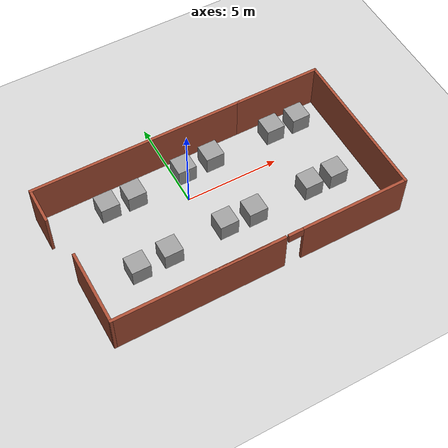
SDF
<sdf version="1.7">
 <world name="default">
  <light name="sun" type="directional">
   <pose>0 0 10 0 -0 0</pose>
   <diffuse>0.8 0.8 0.8 1</diffuse>
   <specular>0.2 0.2 0.2 1</specular>
   <attenuation>
    <range>1000</range>
    <constant>0.9</constant>
    <linear>0.01</linear>
    <quadratic>0.001</quadratic>
   </attenuation>
   <direction>-0.5 0.1 -0.9</direction>
   <spot><inner_angle>0</inner_angle><outer_angle>0</outer_angle><falloff>0</falloff></spot>
  </light>
  <model name="ground_plane">
   <static>1</static>
   <link name="link">
    <collision name="collision">
     <geometry><plane><normal>0 0 1</normal><size>100 100</size></plane></geometry>
     <surface>
      <contact><collide_bitmask>65535</collide_bitmask></contact>
      <friction><ode><mu>100</mu><mu2>50</mu2></ode></friction>
     </surface>
    </collision>
    <visual name="visual">
     <cast_shadows>0</cast_shadows>
     <geometry><plane><normal>0 0 1</normal><size>100 100</size></plane></geometry>
     <material>
      <script><uri>file://media/materials/scripts/gazebo.material</uri><name>Gazebo/Grey</name></script>
     </material>
    </visual>
   </link>
  </model>
  <gravity>0 0 -9.8</gravity>
  <magnetic_field>6e-06 2.3e-05 -4.2e-05</magnetic_field>
  <atmosphere type="adiabatic"/>
  <physics type="ode">
   <max_step_size>0.001</max_step_size>
   <real_time_factor>1</real_time_factor>
   <real_time_update_rate>1000</real_time_update_rate>
  </physics>
  <scene><ambient>0.4 0.4 0.4 1</ambient><background>0.7 0.7 0.7 1</background><shadows>1</shadows></scene>
  <audio><device>default</device></audio>
  <spherical_coordinates>
   <surface_model>EARTH_WGS84</surface_model>
   <latitude_deg>0</latitude_deg>
   <longitude_deg>0</longitude_deg>
   <elevation>0</elevation>
   <heading_deg>0</heading_deg>
  </spherical_coordinates>
  <model name="cafe_new">
   <pose>0.870404 -1.49086 0 0 -0 0</pose>
   <link name="Wall_1">
    <collision name="Wall_1_Collision">
     <geometry><box><size>2 0.15 2.5</size></box></geometry>
     <pose>0 0 1.25 0 -0 0</pose>
    </collision>
    <visual name="Wall_1_Visual">
     <pose>0 0 1.25 0 -0 0</pose>
     <geometry><box><size>2 0.15 2.5</size></box></geometry>
     <material>
      <script><uri>file://media/materials/scripts/gazebo.material</uri><name>Gazebo/Bricks</name></script>
      <ambient>1 1 1 1</ambient>
     </material>
     <meta><layer>0</layer></meta>
    </visual>
    <pose>-7.975 3.125 0 0 -0 1.5708</pose>
   </link>
   <link name="Wall_2">
    <collision name="Wall_2_Collision">
     <geometry><box><size>11.5 0.15 2.5</size></box></geometry>
     <pose>0 0 1.25 0 -0 0</pose>
    </collision>
    <visual name="Wall_2_Visual">
     <pose>0 0 1.25 0 -0 0</pose>
     <geometry><box><size>11.5 0.15 2.5</size></box></geometry>
     <material>
      <script><uri>file://media/materials/scripts/gazebo.material</uri><name>Gazebo/Bricks</name></script>
      <ambient>1 1 1 1</ambient>
     </material>
     <meta><layer>0</layer></meta>
    </visual>
    <pose>-2.3 4.05 0 0 -0 0</pose>
   </link>
   <link name="Wall_3">
    <collision name="Wall_3_Collision">
     <geometry><box><size>4.75 0.15 2.5</size></box></geometry>
     <pose>0 0 1.25 0 -0 0</pose>
    </collision>
    <visual name="Wall_3_Visual">
     <pose>0 0 1.25 0 -0 0</pose>
     <geometry><box><size>4.75 0.15 2.5</size></box></geometry>
     <material>
      <script><uri>file://media/materials/scripts/gazebo.material</uri><name>Gazebo/Bricks</name></script>
      <ambient>1 1 1 1</ambient>
     </material>
     <meta><layer>0</layer></meta>
    </visual>
    <pose>5.675 4.05 0 0 -0 0</pose>
   </link>
   <link name="Wall_4">
    <collision name="Wall_4_Collision">
     <geometry><box><size>8.25 0.15 2.5</size></box></geometry>
     <pose>0 0 1.25 0 -0 0</pose>
    </collision>
    <visual name="Wall_4_Visual">
     <pose>0 0 1.25 0 -0 0</pose>
     <geometry><box><size>8.25 0.15 2.5</size></box></geometry>
     <material>
      <script><uri>file://media/materials/scripts/gazebo.material</uri><name>Gazebo/Bricks</name></script>
      <ambient>1 1 1 1</ambient>
     </material>
     <meta><layer>0</layer></meta>
    </visual>
    <pose>7.975 -0 0 0 -0 -1.5708</pose>
   </link>
   <link name="Wall_5">
    <pose>0.175 -4.05 0 0 -0 3.14159</pose>
    <visual name="Wall_5_Visual_0">
     <pose>-4.96927 0 1.25 0 -0 0</pose>
     <geometry><box><size>5.81146 0.15 2.5</size></box></geometry>
     <material>
      <script><uri>file://media/materials/scripts/gazebo.material</uri><name>Gazebo/Bricks</name></script>
      <ambient>1 1 1 1</ambient>
     </material>
     <meta><layer>0</layer></meta>
    </visual>
    <collision name="Wall_5_Collision_0">
     <geometry><box><size>5.81146 0.15 2.5</size></box></geometry>
     <pose>-4.96927 0 1.25 0 -0 0</pose>
    </collision>
    <visual name="Wall_5_Visual_1">
     <pose>3.35573 0 1.25 0 -0 0</pose>
     <geometry><box><size>9.03854 0.15 2.5</size></box></geometry>
     <material>
      <script><uri>file://media/materials/scripts/gazebo.material</uri><name>Gazebo/Bricks</name></script>
      <ambient>1 1 1 1</ambient>
     </material>
     <meta><layer>0</layer></meta>
    </visual>
    <collision name="Wall_5_Collision_1">
     <geometry><box><size>9.03854 0.15 2.5</size></box></geometry>
     <pose>3.35573 0 1.25 0 -0 0</pose>
    </collision>
    <visual name="Wall_5_Visual_2">
     <pose>3.76029 0 1.25 0 -0 0</pose>
     <geometry><box><size>8.22943 0.15 2.5</size></box></geometry>
     <material>
      <script><uri>file://media/materials/scripts/gazebo.material</uri><name>Gazebo/Bricks</name></script>
      <ambient>1 1 1 1</ambient>
     </material>
     <meta><layer>0</layer></meta>
    </visual>
    <collision name="Wall_5_Collision_2">
     <geometry><box><size>8.22943 0.15 2.5</size></box></geometry>
     <pose>3.76029 0 1.25 0 -0 0</pose>
    </collision>
    <visual name="Wall_5_Visual_3">
     <pose>-1.65898 0 2.25 0 -0 0</pose>
     <geometry><box><size>0.809112 0.15 0.5</size></box></geometry>
     <material>
      <script><uri>file://media/materials/scripts/gazebo.material</uri><name>Gazebo/Bricks</name></script>
      <ambient>1 1 1 1</ambient>
     </material>
     <meta><layer>0</layer></meta>
    </visual>
    <collision name="Wall_5_Collision_3">
     <geometry><box><size>0.809112 0.15 0.5</size></box></geometry>
     <pose>-1.65898 0 2.25 0 -0 0</pose>
    </collision>
   </link>
   <link name="Wall_6">
    <collision name="Wall_6_Collision">
     <geometry><box><size>4 0.15 2.5</size></box></geometry>
     <pose>0 0 1.25 0 -0 0</pose>
    </collision>
    <visual name="Wall_6_Visual">
     <pose>0 0 1.25 0 -0 0</pose>
     <geometry><box><size>4 0.15 2.5</size></box></geometry>
     <material>
      <script><uri>file://media/materials/scripts/gazebo.material</uri><name>Gazebo/Bricks</name></script>
      <ambient>1 1 1 1</ambient>
     </material>
     <meta><layer>0</layer></meta>
    </visual>
    <pose>-7.625 -2.125 0 0 -0 1.5708</pose>
   </link>
   <static>1</static>
  </model>
  <model name="unit_box">
   <pose>7.2618 1.60045 0.499995 0 1e-05 0</pose>
   <link name="link">
    <inertial>
     <mass>1</mass>
     <inertia>
      <ixx>0.166667</ixx>
      <ixy>0</ixy>
      <ixz>0</ixz>
      <iyy>0.166667</iyy>
      <iyz>0</iyz>
      <izz>0.166667</izz>
     </inertia>
    </inertial>
    <collision name="collision"><geometry><box><size>1 1 1</size></box></geometry></collision>
    <visual name="visual">
     <geometry><box><size>1 1 1</size></box></geometry>
     <material>
      <script><name>Gazebo/Grey</name><uri>file://media/materials/scripts/gazebo.material</uri></script>
     </material>
    </visual>
   </link>
  </model>
  <model name="unit_box_0">
   <pose>5.72334 1.60045 0.499995 -1e-05 -0 -0</pose>
   <link name="link">
    <inertial>
     <mass>1</mass>
     <inertia>
      <ixx>0.166667</ixx>
      <ixy>0</ixy>
      <ixz>0</ixz>
      <iyy>0.166667</iyy>
      <iyz>0</iyz>
      <izz>0.166667</izz>
     </inertia>
    </inertial>
    <collision name="collision"><geometry><box><size>1 1 1</size></box></geometry></collision>
    <visual name="visual">
     <geometry><box><size>1 1 1</size></box></geometry>
     <material>
      <script><name>Gazebo/Grey</name><uri>file://media/materials/scripts/gazebo.material</uri></script>
     </material>
    </visual>
   </link>
  </model>
  <model name="unit_box_1">
   <pose>2.11897 1.5565 0.499995 0 1e-05 0</pose>
   <link name="link">
    <inertial>
     <mass>1</mass>
     <inertia>
      <ixx>0.166667</ixx>
      <ixy>0</ixy>
      <ixz>0</ixz>
      <iyy>0.166667</iyy>
      <iyz>0</iyz>
      <izz>0.166667</izz>
     </inertia>
    </inertial>
    <collision name="collision"><geometry><box><size>1 1 1</size></box></geometry></collision>
    <visual name="visual">
     <geometry><box><size>1 1 1</size></box></geometry>
     <material>
      <script><name>Gazebo/Grey</name><uri>file://media/materials/scripts/gazebo.material</uri></script>
     </material>
    </visual>
   </link>
  </model>
  <model name="unit_box_2">
   <pose>0.492612 1.51256 0.499995 -1e-05 -0 -0</pose>
   <link name="link">
    <inertial>
     <mass>1</mass>
     <inertia>
      <ixx>0.166667</ixx>
      <ixy>0</ixy>
      <ixz>0</ixz>
      <iyy>0.166667</iyy>
      <iyz>0</iyz>
      <izz>0.166667</izz>
     </inertia>
    </inertial>
    <collision name="collision"><geometry><box><size>1 1 1</size></box></geometry></collision>
    <visual name="visual">
     <geometry><box><size>1 1 1</size></box></geometry>
     <material>
      <script><name>Gazebo/Grey</name><uri>file://media/materials/scripts/gazebo.material</uri></script>
     </material>
    </visual>
   </link>
  </model>
  <model name="unit_box_3">
   <pose>7.04202 -2.35553 0.499995 0 1e-05 0</pose>
   <link name="link">
    <inertial>
     <mass>1</mass>
     <inertia>
      <ixx>0.166667</ixx>
      <ixy>0</ixy>
      <ixz>0</ixz>
      <iyy>0.166667</iyy>
      <iyz>0</iyz>
      <izz>0.166667</izz>
     </inertia>
    </inertial>
    <collision name="collision"><geometry><box><size>1 1 1</size></box></geometry></collision>
    <visual name="visual">
     <geometry><box><size>1 1 1</size></box></geometry>
     <material>
      <script><name>Gazebo/Grey</name><uri>file://media/materials/scripts/gazebo.material</uri></script>
     </material>
    </visual>
   </link>
  </model>
  <model name="unit_box_4">
   <pose>5.59147 -2.35553 0.499995 -1e-05 -0 -0</pose>
   <link name="link">
    <inertial>
     <mass>1</mass>
     <inertia>
      <ixx>0.166667</ixx>
      <ixy>0</ixy>
      <ixz>0</ixz>
      <iyy>0.166667</iyy>
      <iyz>0</iyz>
      <izz>0.166667</izz>
     </inertia>
    </inertial>
    <collision name="collision"><geometry><box><size>1 1 1</size></box></geometry></collision>
    <visual name="visual">
     <geometry><box><size>1 1 1</size></box></geometry>
     <material>
      <script><name>Gazebo/Grey</name><uri>file://media/materials/scripts/gazebo.material</uri></script>
     </material>
    </visual>
   </link>
  </model>
  <model name="unit_box_5">
   <pose>2.34587 -2.4071 0.499995 0 1e-05 0</pose>
   <link name="link">
    <inertial>
     <mass>1</mass>
     <inertia>
      <ixx>0.166667</ixx>
      <ixy>0</ixy>
      <ixz>0</ixz>
      <iyy>0.166667</iyy>
      <iyz>0</iyz>
      <izz>0.166667</izz>
     </inertia>
    </inertial>
    <collision name="collision"><geometry><box><size>1 1 1</size></box></geometry></collision>
    <visual name="visual">
     <geometry><box><size>1 1 1</size></box></geometry>
     <material>
      <script><name>Gazebo/Grey</name><uri>file://media/materials/scripts/gazebo.material</uri></script>
     </material>
    </visual>
   </link>
  </model>
  <model name="unit_box_6">
   <pose>0.744617 -2.36002 0.499995 -1e-05 -0 -0</pose>
   <link name="link">
    <inertial>
     <mass>1</mass>
     <inertia>
      <ixx>0.166667</ixx>
      <ixy>0</ixy>
      <ixz>0</ixz>
      <iyy>0.166667</iyy>
      <iyz>0</iyz>
      <izz>0.166667</izz>
     </inertia>
    </inertial>
    <collision name="collision"><geometry><box><size>1 1 1</size></box></geometry></collision>
    <visual name="visual">
     <geometry><box><size>1 1 1</size></box></geometry>
     <material>
      <script><name>Gazebo/Grey</name><uri>file://media/materials/scripts/gazebo.material</uri></script>
     </material>
    </visual>
   </link>
  </model>
  <model name="unit_box_7">
   <pose>-2.41079 1.31329 0.499995 0 1e-05 0</pose>
   <link name="link">
    <inertial>
     <mass>1</mass>
     <inertia>
      <ixx>0.166667</ixx>
      <ixy>0</ixy>
      <ixz>0</ixz>
      <iyy>0.166667</iyy>
      <iyz>0</iyz>
      <izz>0.166667</izz>
     </inertia>
    </inertial>
    <collision name="collision"><geometry><box><size>1 1 1</size></box></geometry></collision>
    <visual name="visual">
     <geometry><box><size>1 1 1</size></box></geometry>
     <material>
      <script><name>Gazebo/Grey</name><uri>file://media/materials/scripts/gazebo.material</uri></script>
     </material>
    </visual>
   </link>
  </model>
  <model name="unit_box_8">
   <pose>-3.87072 1.3133 0.499995 -1e-05 -0 -0</pose>
   <link name="link">
    <inertial>
     <mass>1</mass>
     <inertia>
      <ixx>0.166667</ixx>
      <ixy>0</ixy>
      <ixz>0</ixz>
      <iyy>0.166667</iyy>
      <iyz>0</iyz>
      <izz>0.166667</izz>
     </inertia>
    </inertial>
    <collision name="collision"><geometry><box><size>1 1 1</size></box></geometry></collision>
    <visual name="visual">
     <geometry><box><size>1 1 1</size></box></geometry>
     <material>
      <script><name>Gazebo/Grey</name><uri>file://media/materials/scripts/gazebo.material</uri></script>
     </material>
    </visual>
   </link>
  </model>
  <model name="unit_box_9">
   <pose>-2.36368 -2.50138 0.499995 0 1e-05 0</pose>
   <link name="link">
    <inertial>
     <mass>1</mass>
     <inertia>
      <ixx>0.166667</ixx>
      <ixy>0</ixy>
      <ixz>0</ixz>
      <iyy>0.166667</iyy>
      <iyz>0</iyz>
      <izz>0.166667</izz>
     </inertia>
    </inertial>
    <collision name="collision"><geometry><box><size>1 1 1</size></box></geometry></collision>
    <visual name="visual">
     <geometry><box><size>1 1 1</size></box></geometry>
     <material>
      <script><name>Gazebo/Grey</name><uri>file://media/materials/scripts/gazebo.material</uri></script>
     </material>
    </visual>
   </link>
  </model>
  <model name="unit_box_10">
   <pose>-4.1062 -2.54847 0.499995 -1e-05 -0 0</pose>
   <link name="link">
    <inertial>
     <mass>1</mass>
     <inertia>
      <ixx>0.166667</ixx>
      <ixy>0</ixy>
      <ixz>0</ixz>
      <iyy>0.166667</iyy>
      <iyz>0</iyz>
      <izz>0.166667</izz>
     </inertia>
    </inertial>
    <collision name="collision"><geometry><box><size>1 1 1</size></box></geometry></collision>
    <visual name="visual">
     <geometry><box><size>1 1 1</size></box></geometry>
     <material>
      <script><name>Gazebo/Grey</name><uri>file://media/materials/scripts/gazebo.material</uri></script>
     </material>
    </visual>
   </link>
  </model>
 </world>
</sdf>
